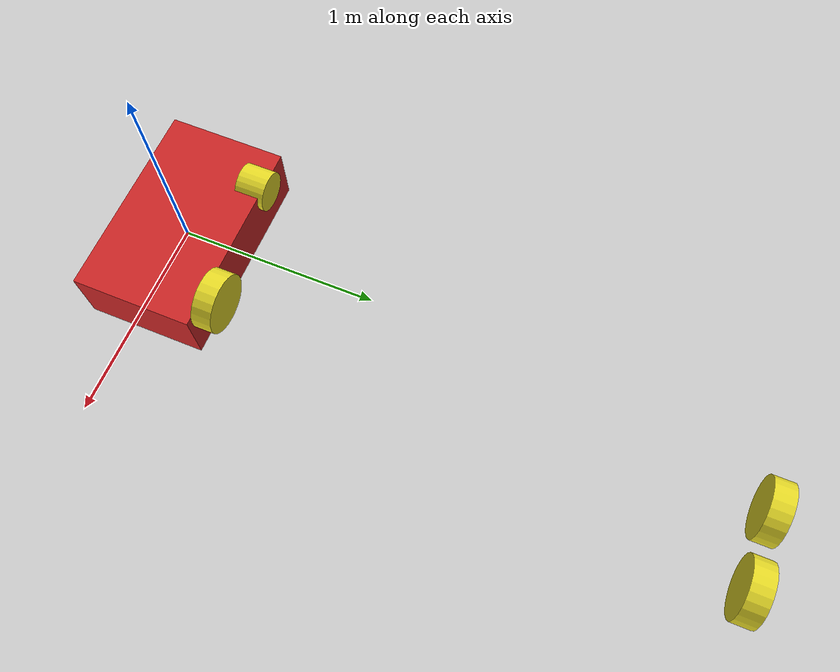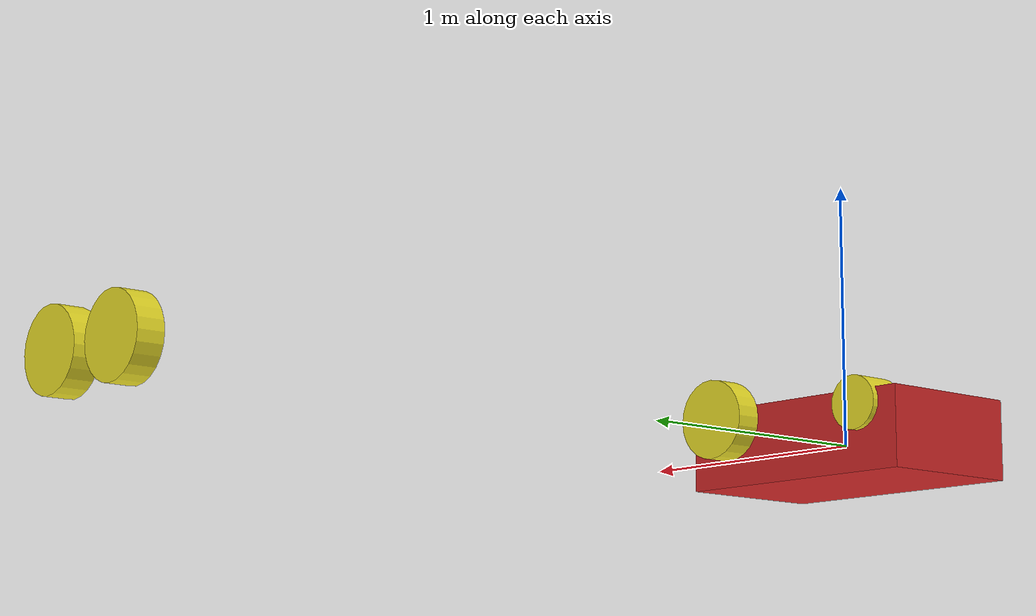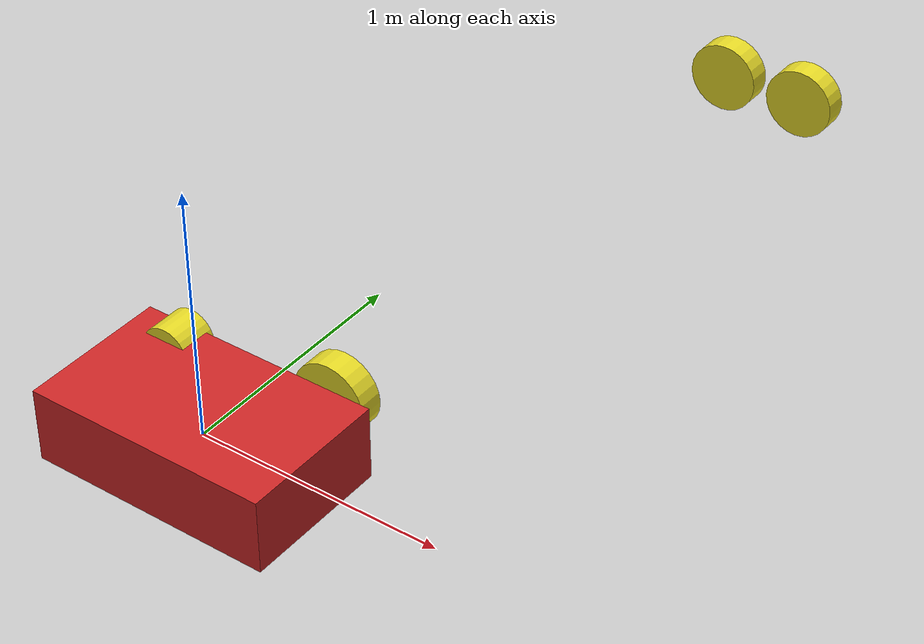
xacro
<?xml version="1.0"?>
<robot name="differential_drive_robot" xmlns:xacro="http://www.ros.org/wiki/xacro">

<xacro:property name='body_link_x_dim' value="1"/>
<xacro:property name='body_link_y_dim' value="0.6"/>
<xacro:property name='body_link_z_dim' value="0.3"/>

<xacro:property name='wheel_link_radius' value="0.15"/>
<xacro:property name='wheel_link_length' value="0.1"/>
<xacro:property name='wheel_link_z_location' value="0.1"/>

<xacro:property name='body_density' value="2710.0"/>
<xacro:property name='wheel_density' value="2710.0"/>

<xacro:property name='pi_const' value="3.14159265"/>

<xacro:property name="body_mass" value="${body_density*body_link_x_dim*body_link_y_dim*body_link_z_dim}"/>
<xacro:property name="wheel_mass" value="${wheel_density*pi_const*wheel_link_radius*wheel_link_radius*wheel_link_length}"/>

<xacro:property name="Iz_wheel" value="${0.5*wheel_mass*wheel_link_radius*wheel_link_radius}"/>
<xacro:property name="I_wheel" value="${(1.0/12.0)*wheel_mass*(3.0*wheel_link_radius*wheel_link_radius+wheel_link_length*wheel_link_length)}"/>

<xacro:macro name="inertial_wheel">
    <inertial>
        <origin rpy="0 0 0" xyz="0 0 0"/>
        <mass value="${wheel_mass}"/>
        <inertia ixx="${I_wheel}" ixy="0.0" ixz="0.0" iyy="${I_wheel}" iyz="0" izz="${Iz_wheel}"/>
    </inertial>
</xacro:macro>

<xacro:include filename="/home/tony/ws_mobile/src/mobile_robot/model/robot.gazebo"/>
<link name="dummy">
</link>

<joint name="dummy_joint" type="fixed">
    <parent link="dummy"/>
    <child link="body_link"/>
</joint>

<link name="body_link">
    <visual>
        <geometry>
            <box size="${body_link_x_dim} ${body_link_y_dim} ${body_link_z_dim}"/>
        </geometry>
    <origin rpy="0 0 0" xyz="0 0 0"/>
    </visual>

    <collision>
        <geometry>
            <box size="${body_link_x_dim} ${body_link_y_dim} ${body_link_z_dim}"/>
        </geometry>
    <origin rpy="0 0 0" xyz="0 0 0"/>
    </collision>

    <inertial>
        <origin rpy="0 0 0" xyz="0 0 0"/>
        <mass value="${body_mass}"/>
        <inertia
        ixx="${(1/12)*body_mass*(body_link_y_dim*body_link_y_dim+body_link_z_dim*body_link_z_dim)}"
        ixy="0"
        ixz='0'
        iyy="${(1/12)*body_mass*(body_link_x_dim*body_link_x_dim+body_link_z_dim*body_link_z_dim)}"
        iyz="0"
        izz="${(1/12)*body_mass*(body_link_x_dim*body_link_x_dim+body_link_y_dim*body_link_y_dim)}"/>
    </inertial>
</link>

<joint name="wheel_1_joint" type="continuous">
    <parent link="body_link"/>
    <child link="wheel1_link"/>
    <origin xyz="${-body_link_x_dim/2+1.2*wheel_link_radius} ${body_link_y_dim/2-wheel_link_length/2} ${wheel_link_z_location}" rpy="0 0 0"/>
    <axis xyz="0.0 1.0 0.0"/>
    <limit effort="1000" velocity="1000"/>
    <dynamics damping="1.0" friction="1.0"/>
</joint>

<link name="wheel1_link">
    <visual>
        <origin rpy="1.570795 0 0" xyz="0 0 0"/>
        <geometry>
            <cylinder radius="${wheel_link_length}" length="${wheel_link_radius}"/>
        </geometry>
    </visual>

    <collision>
        <origin rpy="1.570795 0 0" xyz="0 0 0"/>
        <geometry>
            <cylinder radius="${wheel_link_length}" length="${wheel_link_radius}"/>
        </geometry>
    </collision>

    <xacro:inertial_wheel/>
</link>
<joint name="wheel2_joint" type="continuous">
    <parent link="body_link"/>
    <child link="wheel2_link"/>
    <origin xyz= "${body_link_x_dim/2+1.2*wheel_link_radius} ${body_link_y_dim/+wheel_link_length/2} ${wheel_link_z_location}"/>
    <axis xyz="0 1 0"/>
    <limit effort="1000" velocity="1000"/>
    <dynamics damping="1.0" friction="1.0"/>
</joint>

<link name="wheel2_link">
    <visual>
        <origin rpy="1.570795 0 0" xyz="0 0 0"/>
        <geometry>
            <cylinder length= "${wheel_link_length}" radius="${wheel_link_radius}"/>
        </geometry>
    </visual>
    <collision>
        <origin rpy="1.570795 0 0" xyz="0 0 0"/>
        <geometry>
            <cylinder length= "${wheel_link_length}" radius="${wheel_link_radius}"/>
        </geometry>
    </collision>
    <xacro:inertial_wheel/>
</link>

<joint name="wheel3_joint" type="continuous">
    <parent link="body_link"/>
    <child link="wheel3_link"/>
    <origin xyz= "${body_link_x_dim/2-1.2*wheel_link_radius} ${-body_link_y_dim/-wheel_link_length/2} ${wheel_link_z_location}"/>
    <axis xyz="0 1 0"/>
    <limit effort="1000" velocity="1000"/>
    <dynamics damping="1.0" friction="1.0"/>
</joint>

<link name="wheel3_link">
    <visual>
        <origin rpy="1.570795 0 0" xyz="0 0 0"/>
        <geometry>
            <cylinder length= "${wheel_link_length}" radius="${wheel_link_radius}"/>
        </geometry>
    </visual>
    <collision>
        <origin rpy="1.570795 0 0" xyz="0 0 0"/>
        <geometry>
            <cylinder length= "${wheel_link_length}" radius="${wheel_link_radius}"/>
        </geometry>
    </collision>
    <xacro:inertial_wheel/>
</link>

<joint name="wheel4_joint" type="continuous">
    <parent link="body_link"/>
    <child link="wheel4_link"/>
    <origin xyz= "${body_link_x_dim/2-1.2*wheel_link_radius} ${body_link_y_dim/2+wheel_link_length/2} ${wheel_link_z_location}"/>
    <axis xyz="0 1 0"/>
    <limit effort="1000" velocity="1000"/>
    <dynamics damping="1.0" friction="1.0"/>
</joint>

<link name="wheel4_link">
    <visual>
        <origin rpy="1.570795 0 0" xyz="0 0 0"/>
        <geometry>
            <cylinder length= "${wheel_link_length}" radius="${wheel_link_radius}"/>
        </geometry>
    </visual>
    <collision>
        <origin rpy="1.570795 0 0" xyz="0 0 0"/>
        <geometry>
            <cylinder length= "${wheel_link_length}" radius="${wheel_link_radius}"/>
        </geometry>
    </collision>
    <xacro:inertial_wheel/>
</link>
</robot>
